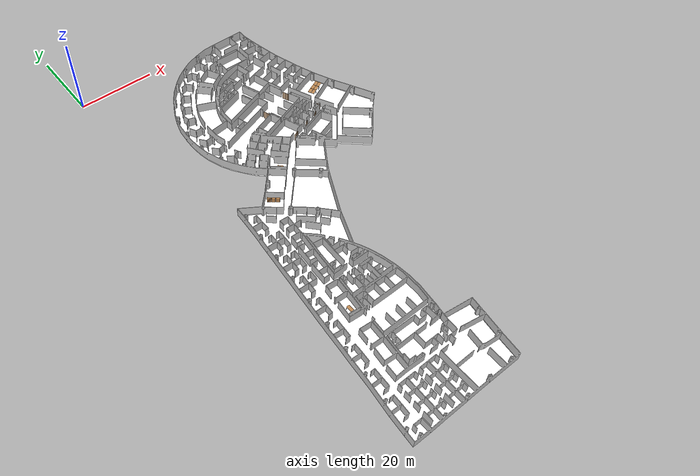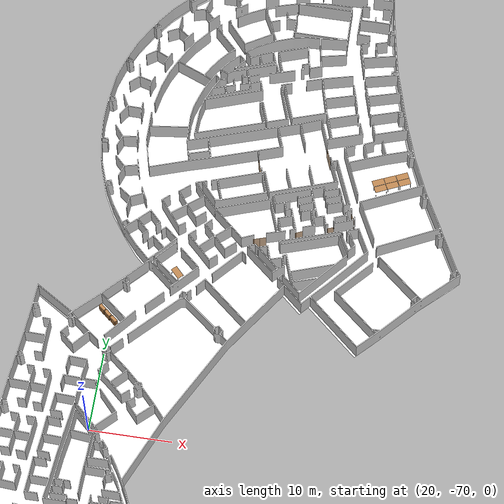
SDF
<sdf version="1.7">
 <world name="world">
  <scene><ambient>0.8 0.8 0.8 1.0</ambient><background>0 0 0</background><grid>false</grid></scene>
  <include><uri>model://sun</uri></include>
  <include>
   <name>OpenRobotics/Table</name>
   <uri>model://Table</uri>
   <pose>14.445396386706355 -88.01514877491877 0.0 0 0 1.5708</pose>
   <static>True</static>
  </include>
  <include>
   <name>OpenRobotics/Table_2</name>
   <uri>model://Table</uri>
   <pose>26.90355624139022 -48.34280959070164 0.0 0 0 2.3292</pose>
   <static>True</static>
  </include>
  <include>
   <name>OpenRobotics/Table_3</name>
   <uri>model://Table</uri>
   <pose>49.315199858933966 -32.279987743199165 0.0 0 0 0.4303</pose>
   <static>True</static>
  </include>
  <include>
   <name>OpenRobotics/Table_4</name>
   <uri>model://Table</uri>
   <pose>50.718865642363795 -31.653960999048657 0.0 0 0 0.4167</pose>
   <static>True</static>
  </include>
  <include>
   <name>OpenRobotics/Table_5</name>
   <uri>model://Table</uri>
   <pose>52.13243403065564 -31.01780400394735 0.0 0 0 0.4347</pose>
   <static>True</static>
  </include>
  <include>
   <name>OpenRobotics/Table_6</name>
   <uri>model://Table</uri>
   <pose>52.47583815558329 -31.77506871828068 0.0 0 0 0.4389</pose>
   <static>True</static>
  </include>
  <include>
   <name>OpenRobotics/Table_7</name>
   <uri>model://Table</uri>
   <pose>51.06215594424706 -32.41122571338198 0.0 0 0 0.4288</pose>
   <static>True</static>
  </include>
  <include>
   <name>OpenRobotics/Table_8</name>
   <uri>model://Table</uri>
   <pose>49.67875066271883 -33.06764321038489 0.0 0 0 0.4547</pose>
   <static>True</static>
  </include>
  <include>
   <name>OpenRobotics/Bookshelf</name>
   <uri>model://Bookshelf</uri>
   <pose>18.97293562344721 -54.263087598610795 0.0 0 0 -0.7204</pose>
   <static>True</static>
  </include>
  <include>
   <name>OpenRobotics/Bookshelf_2</name>
   <uri>model://Bookshelf</uri>
   <pose>19.75956668323342 -54.93134269223036 0.0 0 0 -0.7282</pose>
   <static>True</static>
  </include>
  <include>
   <name>OpenRobotics/Bookshelf_3</name>
   <uri>model://Bookshelf</uri>
   <pose>20.57397056585103 -55.585711374434226 0.0 0 0 -0.7114</pose>
   <static>True</static>
  </include>
  <model name="DH1">
   <pose>36.14462156940682 -42.83422953435475 0.0 0 0 -2.823996757295248</pose>
   <link name="right">
    <pose>0.3941917703005741 0 1.11 0 0 0</pose>
    <visual name="right_visual">
     <geometry><box><size>0.7783835406011482 0.03 2.2</size></box></geometry>
     <material><ambient>0.5 0.25 0 0.6</ambient><diffuse>0.5 0.25 0 0.6</diffuse></material>
    </visual>
    <collision name="right_collision">
     <geometry><box><size>0.7783835406011482 0.03 2.2</size></box></geometry>
     <surface><contact><collide_bitmask>0x02</collide_bitmask></contact></surface>
    </collision>
    <inertial>
     <mass>50.0</mass>
     <inertia><ixx>20.17041666666667</ixx><iyy>22.69117056782825</iyy><izz>2.5282539011615808</izz></inertia>
    </inertial>
   </link>
   <joint name="right_joint" type="revolute">
    <parent>world</parent>
    <child>right</child>
    <axis><xyz>0 0 -1</xyz><limit><lower>0</lower><upper>1.57</upper></limit></axis>
    <pose>0.3941917703005741 0 0 0 0 0</pose>
   </joint>
   <link name="left">
    <pose>-0.3941917703005741 0 1.11 0 0 0</pose>
    <visual name="left_visual">
     <geometry><box><size>0.7783835406011482 0.03 2.2</size></box></geometry>
     <material><ambient>0.5 0.25 0 0.6</ambient><diffuse>0.5 0.25 0 0.6</diffuse></material>
    </visual>
    <collision name="left_collision">
     <geometry><box><size>0.7783835406011482 0.03 2.2</size></box></geometry>
     <surface><contact><collide_bitmask>0x02</collide_bitmask></contact></surface>
    </collision>
    <inertial>
     <mass>50.0</mass>
     <inertia><ixx>20.17041666666667</ixx><iyy>22.69117056782825</iyy><izz>2.5282539011615808</izz></inertia>
    </inertial>
   </link>
   <joint name="left_joint" type="revolute">
    <parent>world</parent>
    <child>left</child>
    <axis><xyz>0 0 -1</xyz><limit><lower>-1.57</lower><upper>0</upper></limit></axis>
    <pose>-0.3941917703005741 0 0 0 0 0</pose>
   </joint>
   <plugin name="door_DH1" filename="libdoor.so">
    <v_max_door>0.5</v_max_door>
    <a_max_door>0.3</a_max_door>
    <a_nom_door>0.15</a_nom_door>
    <dx_min_door>0.01</dx_min_door>
    <f_max_door>500.0</f_max_door>
    <door name="DH1" type="DoubleSwingDoor" left_joint_name="left_joint" right_joint_name="right_joint"/>
   </plugin>
  </model>
  <model name="D1">
   <pose>46.92098903169145 -38.269014869920476 0.0 0 0 -1.0989798712124257</pose>
   <link name="right">
    <pose>0 0 1.11 0 0 0</pose>
    <visual name="right_visual">
     <geometry><box><size>0.9994952973221634 0.03 2.2</size></box></geometry>
     <material><ambient>0.5 0.25 0 0.6</ambient><diffuse>0.5 0.25 0 0.6</diffuse></material>
    </visual>
    <collision name="right_collision">
     <geometry><box><size>0.9994952973221634 0.03 2.2</size></box></geometry>
     <surface><contact><collide_bitmask>0x02</collide_bitmask></contact></surface>
    </collision>
    <inertial>
     <mass>50.0</mass>
     <inertia><ixx>20.17041666666667</ixx><iyy>24.329128539038006</iyy><izz>4.166211872371333</izz></inertia>
    </inertial>
   </link>
   <joint name="right_joint" type="revolute">
    <parent>world</parent>
    <child>right</child>
    <axis><xyz>0 0 1</xyz><limit><lower>0</lower><upper>1.57</upper></limit></axis>
    <pose>0.5047476486610817 0 0 0 0 0</pose>
   </joint>
   <plugin name="door_D1" filename="libdoor.so">
    <v_max_door>0.5</v_max_door>
    <a_max_door>0.3</a_max_door>
    <a_nom_door>0.15</a_nom_door>
    <dx_min_door>0.01</dx_min_door>
    <f_max_door>500.0</f_max_door>
    <door name="D1" type="SwingDoor" left_joint_name="empty_joint" right_joint_name="right_joint"/>
   </plugin>
  </model>
  <model name="DH2">
   <pose>34.58057911643007 -32.862078792214746 0.0 0 0 1.8923597204226241</pose>
   <link name="right">
    <pose>0.48078995757787274 0 1.11 0 0 0</pose>
    <visual name="right_visual">
     <geometry><box><size>0.9515799151557455 0.03 2.2</size></box></geometry>
     <material><ambient>0.5 0.25 0 0.6</ambient><diffuse>0.5 0.25 0 0.6</diffuse></material>
    </visual>
    <collision name="right_collision">
     <geometry><box><size>0.9515799151557455 0.03 2.2</size></box></geometry>
     <surface><contact><collide_bitmask>0x02</collide_bitmask></contact></surface>
    </collision>
    <inertial>
     <mass>50.0</mass>
     <inertia><ixx>20.17041666666667</ixx><iyy>23.93960139553257</iyy><izz>3.7766847288658996</izz></inertia>
    </inertial>
   </link>
   <joint name="right_joint" type="revolute">
    <parent>world</parent>
    <child>right</child>
    <axis><xyz>0 0 -1</xyz><limit><lower>0</lower><upper>1.57</upper></limit></axis>
    <pose>0.48078995757787274 0 0 0 0 0</pose>
   </joint>
   <link name="left">
    <pose>-0.48078995757787274 0 1.11 0 0 0</pose>
    <visual name="left_visual">
     <geometry><box><size>0.9515799151557455 0.03 2.2</size></box></geometry>
     <material><ambient>0.5 0.25 0 0.6</ambient><diffuse>0.5 0.25 0 0.6</diffuse></material>
    </visual>
    <collision name="left_collision">
     <geometry><box><size>0.9515799151557455 0.03 2.2</size></box></geometry>
     <surface><contact><collide_bitmask>0x02</collide_bitmask></contact></surface>
    </collision>
    <inertial>
     <mass>50.0</mass>
     <inertia><ixx>20.17041666666667</ixx><iyy>23.93960139553257</iyy><izz>3.7766847288658996</izz></inertia>
    </inertial>
   </link>
   <joint name="left_joint" type="revolute">
    <parent>world</parent>
    <child>left</child>
    <axis><xyz>0 0 -1</xyz><limit><lower>-1.57</lower><upper>0</upper></limit></axis>
    <pose>-0.48078995757787274 0 0 0 0 0</pose>
   </joint>
   <plugin name="door_DH2" filename="libdoor.so">
    <v_max_door>0.5</v_max_door>
    <a_max_door>0.3</a_max_door>
    <a_nom_door>0.15</a_nom_door>
    <dx_min_door>0.01</dx_min_door>
    <f_max_door>500.0</f_max_door>
    <door name="DH2" type="DoubleSwingDoor" left_joint_name="left_joint" right_joint_name="right_joint"/>
   </plugin>
  </model>
  <model name="DH3">
   <pose>42.76673246903089 -30.078593153155005 0.0 0 0 -1.214222683210574</pose>
   <link name="right">
    <pose>0.4835757079634831 0 1.11 0 0 0</pose>
    <visual name="right_visual">
     <geometry><box><size>0.9571514159269662 0.03 2.2</size></box></geometry>
     <material><ambient>0.5 0.25 0 0.6</ambient><diffuse>0.5 0.25 0 0.6</diffuse></material>
    </visual>
    <collision name="right_collision">
     <geometry><box><size>0.9571514159269662 0.03 2.2</size></box></geometry>
     <surface><contact><collide_bitmask>0x02</collide_bitmask></contact></surface>
    </collision>
    <inertial>
     <mass>50.0</mass>
     <inertia><ixx>20.17041666666667</ixx><iyy>23.98391180421249</iyy><izz>3.8209951375458178</izz></inertia>
    </inertial>
   </link>
   <joint name="right_joint" type="revolute">
    <parent>world</parent>
    <child>right</child>
    <axis><xyz>0 0 -1</xyz><limit><lower>0</lower><upper>1.57</upper></limit></axis>
    <pose>0.4835757079634831 0 0 0 0 0</pose>
   </joint>
   <link name="left">
    <pose>-0.4835757079634831 0 1.11 0 0 0</pose>
    <visual name="left_visual">
     <geometry><box><size>0.9571514159269662 0.03 2.2</size></box></geometry>
     <material><ambient>0.5 0.25 0 0.6</ambient><diffuse>0.5 0.25 0 0.6</diffuse></material>
    </visual>
    <collision name="left_collision">
     <geometry><box><size>0.9571514159269662 0.03 2.2</size></box></geometry>
     <surface><contact><collide_bitmask>0x02</collide_bitmask></contact></surface>
    </collision>
    <inertial>
     <mass>50.0</mass>
     <inertia><ixx>20.17041666666667</ixx><iyy>23.98391180421249</iyy><izz>3.8209951375458178</izz></inertia>
    </inertial>
   </link>
   <joint name="left_joint" type="revolute">
    <parent>world</parent>
    <child>left</child>
    <axis><xyz>0 0 -1</xyz><limit><lower>-1.57</lower><upper>0</upper></limit></axis>
    <pose>-0.4835757079634831 0 0 0 0 0</pose>
   </joint>
   <plugin name="door_DH3" filename="libdoor.so">
    <v_max_door>0.5</v_max_door>
    <a_max_door>0.3</a_max_door>
    <a_nom_door>0.15</a_nom_door>
    <dx_min_door>0.01</dx_min_door>
    <f_max_door>500.0</f_max_door>
    <door name="DH3" type="DoubleSwingDoor" left_joint_name="left_joint" right_joint_name="right_joint"/>
   </plugin>
  </model>
  <model name="D2">
   <pose>40.74187742083717 -41.25282906710838 0.0 0 0 -2.713354953131238</pose>
   <link name="right">
    <pose>0 0 1.11 0 0 0</pose>
    <visual name="right_visual">
     <geometry><box><size>0.9260351120050222 0.03 2.2</size></box></geometry>
     <material><ambient>0.5 0.25 0 0.6</ambient><diffuse>0.5 0.25 0 0.6</diffuse></material>
    </visual>
    <collision name="right_collision">
     <geometry><box><size>0.9260351120050222 0.03 2.2</size></box></geometry>
     <surface><contact><collide_bitmask>0x02</collide_bitmask></contact></surface>
    </collision>
    <inertial>
     <mass>50.0</mass>
     <inertia><ixx>20.17041666666667</ixx><iyy>23.73975428610898</iyy><izz>3.576837619442309</izz></inertia>
    </inertial>
   </link>
   <joint name="right_joint" type="revolute">
    <parent>world</parent>
    <child>right</child>
    <axis><xyz>0 0 1</xyz><limit><lower>0</lower><upper>1.57</upper></limit></axis>
    <pose>0.4680175560025111 0 0 0 0 0</pose>
   </joint>
   <plugin name="door_D2" filename="libdoor.so">
    <v_max_door>0.5</v_max_door>
    <a_max_door>0.3</a_max_door>
    <a_nom_door>0.15</a_nom_door>
    <dx_min_door>0.01</dx_min_door>
    <f_max_door>500.0</f_max_door>
    <door name="D2" type="SwingDoor" left_joint_name="empty_joint" right_joint_name="right_joint"/>
   </plugin>
  </model>
  <model name="D3">
   <pose>44.45780143954799 -40.09541944021848 0.0 0 0 -2.8085231029714666</pose>
   <link name="right">
    <pose>0 0 1.11 0 0 0</pose>
    <visual name="right_visual">
     <geometry><box><size>0.8422487052230405 0.03 2.2</size></box></geometry>
     <material><ambient>0.5 0.25 0 0.6</ambient><diffuse>0.5 0.25 0 0.6</diffuse></material>
    </visual>
    <collision name="right_collision">
     <geometry><box><size>0.8422487052230405 0.03 2.2</size></box></geometry>
     <surface><contact><collide_bitmask>0x02</collide_bitmask></contact></surface>
    </collision>
    <inertial>
     <mass>50.0</mass>
     <inertia><ixx>20.17041666666667</ixx><iyy>23.122428672707873</iyy><izz>2.959512006041201</izz></inertia>
    </inertial>
   </link>
   <joint name="right_joint" type="revolute">
    <parent>world</parent>
    <child>right</child>
    <axis><xyz>0 0 1</xyz><limit><lower>0</lower><upper>1.57</upper></limit></axis>
    <pose>0.42612435261152026 0 0 0 0 0</pose>
   </joint>
   <plugin name="door_D3" filename="libdoor.so">
    <v_max_door>0.5</v_max_door>
    <a_max_door>0.3</a_max_door>
    <a_nom_door>0.15</a_nom_door>
    <dx_min_door>0.01</dx_min_door>
    <f_max_door>500.0</f_max_door>
    <door name="D3" type="SwingDoor" left_joint_name="empty_joint" right_joint_name="right_joint"/>
   </plugin>
  </model>
  <include><name>I2R_LVL9_LVL9</name><uri>model://I2R_LVL9_LVL9</uri></include>
  <rmf_charger_waypoints name="charger_waypoints"/>
 </world>
</sdf>

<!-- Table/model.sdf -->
<sdf version="1.5">
  <model name="Table">
    <static>true</static>
    <link name="link">
      <collision name="surface">
        <pose>0 0 1.0 0 0 0</pose>
        <geometry>
          <box>
            <size>1.5 0.8 0.03</size>
          </box>
        </geometry>
        <surface>
          <friction>
            <ode>
              <mu>0.6</mu>
              <mu2>0.6</mu2>
            </ode>
          </friction>
        </surface>
      </collision>
      <visual name="visual1">
        <pose>0 0 1.0 0 0 0</pose>
        <geometry>
          <box>
            <size>1.5 0.8 0.03</size>
          </box>
        </geometry>
        <material>
          <script>
            <uri>file://media/materials/scripts/gazebo.material</uri>
            <name>Gazebo/Wood</name>
          </script>
        </material>
      </visual>
      <collision name="front_left_leg">
        <pose>0.68 0.38 0.5 0 0 0</pose>
        <geometry>
          <cylinder>
            <radius>0.02</radius>
            <length>1.0</length>
          </cylinder>
        </geometry>
      </collision>
      <visual name="front_left_leg">
        <pose>0.68 0.38 0.5 0 0 0</pose>
        <geometry>
          <cylinder>
            <radius>0.02</radius>
            <length>1.0</length>
          </cylinder>
        </geometry>
        <material>
          <script>
            <uri>file://media/materials/scripts/gazebo.material</uri>
            <name>Gazebo/Grey</name>
          </script>
        </material>
      </visual>
      <collision name="front_right_leg">
        <pose>0.68 -0.38 0.5 0 0 0</pose>
        <geometry>
          <cylinder>
            <radius>0.02</radius>
            <length>1.0</length>
          </cylinder>
        </geometry>
      </collision>
      <visual name="front_right_leg">
        <pose>0.68 -0.38 0.5 0 0 0</pose>
        <geometry>
          <cylinder>
            <radius>0.02</radius>
            <length>1.0</length>
          </cylinder>
        </geometry>
        <material>
          <script>
            <uri>file://media/materials/scripts/gazebo.material</uri>
            <name>Gazebo/Grey</name>
          </script>
        </material>
      </visual>
      <collision name="back_right_leg">
        <pose>-0.68 -0.38 0.5 0 0 0</pose>
        <geometry>
          <cylinder>
            <radius>0.02</radius>
            <length>1.0</length>
          </cylinder>
        </geometry>
      </collision>
      <visual name="back_right_leg">
        <pose>-0.68 -0.38 0.5 0 0 0</pose>
        <geometry>
          <cylinder>
            <radius>0.02</radius>
            <length>1.0</length>
          </cylinder>
        </geometry>
        <material>
          <script>
            <uri>file://media/materials/scripts/gazebo.material</uri>
            <name>Gazebo/Grey</name>
          </script>
        </material>
      </visual>
      <collision name="back_left_leg">
        <pose>-0.68 0.38 0.5 0 0 0</pose>
        <geometry>
          <cylinder>
            <radius>0.02</radius>
            <length>1.0</length>
          </cylinder>
        </geometry>
      </collision>
      <visual name="back_left_leg">
        <pose>-0.68 0.38 0.5 0 0 0</pose>
        <geometry>
          <cylinder>
            <radius>0.02</radius>
            <length>1.0</length>
          </cylinder>
        </geometry>
        <material>
          <script>
            <uri>file://media/materials/scripts/gazebo.material</uri>
            <name>Gazebo/Grey</name>
          </script>
        </material>
      </visual>
    </link>
  </model>
</sdf>

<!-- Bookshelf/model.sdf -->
<sdf version="1.5">
  <model name="Bookshelf">
    <static>true</static>
    <link name="link">
      <inertial>
        <mass>1.0</mass>
      </inertial>
      <collision name="back">
        <pose>0 0.005 0.6 0 0 0</pose>
        <geometry>
          <box>
            <size>0.9 0.01 1.2</size>
          </box>
        </geometry>
      </collision>
      <visual name="visual1">
        <pose>0 0.005 0.6 0 0 0</pose>
        <geometry>
          <box>
            <size>0.9 0.01 1.2</size>
          </box>
        </geometry>
        <material>
          <script>
            <uri>file://media/materials/scripts/gazebo.material</uri>
            <name>Gazebo/Wood</name>
          </script>
        </material>
      </visual>
      <collision name="left_side">
        <pose>0.45 -0.195 0.6 0 0 0</pose>
        <geometry>
          <box>
            <size>0.02 0.4 1.2</size>
          </box>
        </geometry>
      </collision>
      <visual name="visual2">
        <pose>0.45 -0.195 0.6 0 0 0</pose>
        <geometry>
          <box>
            <size>0.02 0.4 1.2</size>
          </box>
        </geometry>
        <material>
          <script>
            <uri>file://media/materials/scripts/gazebo.material</uri>
            <name>Gazebo/Wood</name>
          </script>
        </material>
      </visual>
      <collision name="right_side">
        <pose>-0.45 -0.195 0.6 0 0 0</pose>
        <geometry>
          <box>
            <size>0.02 0.4 1.2</size>
          </box>
        </geometry>
      </collision>
      <visual name="visual3">
        <pose>-0.45 -0.195 0.6 0 0 0</pose>
        <geometry>
          <box>
            <size>0.02 0.4 1.2</size>
          </box>
        </geometry>
        <material>
          <script>
            <uri>file://media/materials/scripts/gazebo.material</uri>
            <name>Gazebo/Wood</name>
          </script>
        </material>
      </visual>
      <collision name="bottom">
        <pose>0 -0.195 0.03 0 0 0</pose>
        <geometry>
          <box>
            <size>0.88 0.4 0.06</size>
          </box>
        </geometry>
      </collision>
      <visual name="visual4">
        <pose>0 -0.195 0.03 0 0 0</pose>
        <geometry>
          <box>
            <size>0.88 0.4 0.06</size>
          </box>
        </geometry>
        <material>
          <script>
            <uri>file://media/materials/scripts/gazebo.material</uri>
            <name>Gazebo/Wood</name>
          </script>
        </material>
      </visual>
      <collision name="top">
        <pose>0 -0.195 1.19 0 0 0</pose>
        <geometry>
          <box>
            <size>0.88 0.4 0.02</size>
          </box>
        </geometry>
      </collision>
      <visual name="visual5">
        <pose>0 -0.195 1.19 0 0 0</pose>
        <geometry>
          <box>
            <size>0.88 0.4 0.02</size>
          </box>
        </geometry>
        <material>
          <script>
            <uri>file://media/materials/scripts/gazebo.material</uri>
            <name>Gazebo/Wood</name>
          </script>
        </material>
      </visual>
      <collision name="low_shelf">
        <pose>0 -0.195 0.43 0 0 0</pose>
        <geometry>
          <box>
            <size>0.88 0.4 0.02</size>
          </box>
        </geometry>
      </collision>
      <visual name="visual6">
        <pose>0 -0.195 0.43 0 0 0</pose>
        <geometry>
          <box>
            <size>0.88 0.4 0.02</size>
          </box>
        </geometry>
        <material>
          <script>
            <uri>file://media/materials/scripts/gazebo.material</uri>
            <name>Gazebo/Wood</name>
          </script>
        </material>
      </visual>
      <collision name="high_shelf">
        <pose>0 -0.195 0.8 0 0 0</pose>
        <geometry>
          <box>
            <size>0.88 0.4 0.02</size>
          </box>
        </geometry>
      </collision>
      <visual name="visual7">
        <pose>0 -0.195 0.8 0 0 0</pose>
        <geometry>
          <box>
            <size>0.88 0.4 0.02</size>
          </box>
        </geometry>
        <material>
          <script>
            <uri>file://media/materials/scripts/gazebo.material</uri>
            <name>Gazebo/Wood</name>
          </script>
        </material>
      </visual>
    </link>
  </model>
</sdf>

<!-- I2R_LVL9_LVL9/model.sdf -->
<sdf version="1.7">
  <model name="I2R_LVL9_LVL9">
    <static>true</static>
    <link name="floor_1">
      <visual name="visual">
        <geometry>
          <mesh>
            <uri>model://I2R_LVL9_LVL9/meshes/floor_1.obj</uri>
          </mesh>
        </geometry>
        <material>
          <diffuse>1.0 1.0 1.0</diffuse>
          <specular>0.1 0.1 0.1</specular>
          <pbr>
            <metal>
              <metalness>0.0</metalness>
              <albedo_map>model://I2R_LVL9_LVL9/meshes/blue_linoleum.png</albedo_map>
            </metal>
          </pbr>
          <script>
            <uri>model://I2R_LVL9_LVL9/meshes/</uri>
            <name>floor_1_Diffuse</name>
          </script>
        </material>
      </visual>
      <collision name="collision">
        <geometry>
          <mesh>
            <uri>model://I2R_LVL9_LVL9/meshes/floor_1.obj</uri>
          </mesh>
        </geometry>
        <surface>
          <contact>
            <collide_bitmask>0x01</collide_bitmask>
          </contact>
        </surface>
      </collision>
    </link>
    <link name="wall_1">
      <visual name="wall_1">
        <geometry>
          <mesh>
            <uri>model://I2R_LVL9_LVL9/meshes/wall_1.obj</uri>
          </mesh>
        </geometry>
        <material>
          <diffuse>1.0 1.0 1.0</diffuse>
          <specular>0.1 0.1 0.1</specular>
          <pbr>
            <metal>
              <metalness>0.0</metalness>
              <albedo_map>model://I2R_LVL9_LVL9/meshes/default.png</albedo_map>
            </metal>
          </pbr>
          <script>
            <uri>model://I2R_LVL9_LVL9/meshes/</uri>
            <name>wall_1_Diffuse</name>
          </script>
        </material>
      </visual>
      <collision name="collision">
        <geometry>
          <mesh>
            <uri>model://I2R_LVL9_LVL9/meshes/wall_1.obj</uri>
          </mesh>
        </geometry>
        <surface>
          <contact>
            <collide_bitmask>0x01</collide_bitmask>
          </contact>
        </surface>
      </collision>
      <pose>4.672885194576192 -117.06820370283158 0 0 0 0</pose>
    </link>
  </model>
</sdf>
